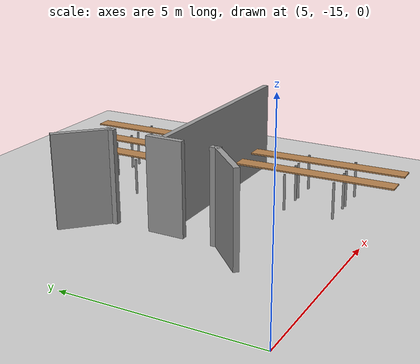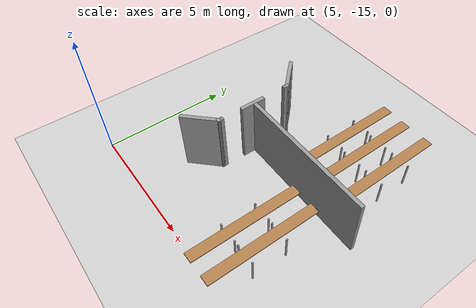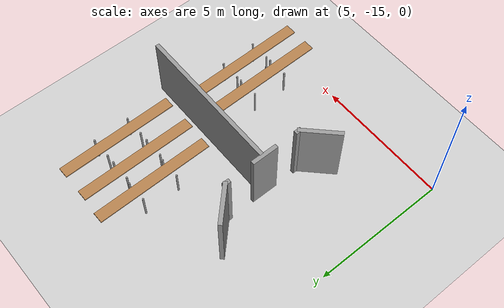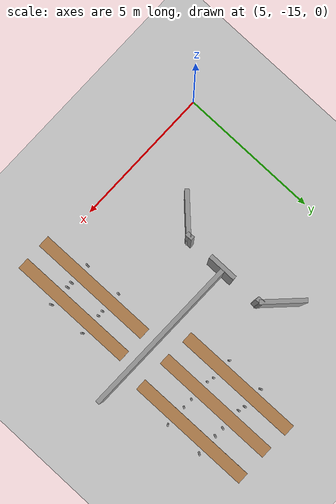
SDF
<sdf version="1.6">
 <world name="default">
  <model name="ground_plane">
   <static>1</static>
   <link name="link">
    <collision name="collision">
     <geometry><plane><normal>0 0 1</normal><size>100 100</size></plane></geometry>
     <surface><friction><ode><mu>100</mu><mu2>50</mu2></ode></friction></surface>
    </collision>
    <visual name="visual">
     <cast_shadows>0</cast_shadows>
     <geometry><plane><normal>0 0 1</normal><size>100 100</size></plane></geometry>
     <material>
      <script><uri>file://media/materials/scripts/gazebo.material</uri><name>Gazebo/Grey</name></script>
     </material>
    </visual>
   </link>
  </model>
  <model name="Parte_DX_(visione_alta_mappa)_CV1">
   <pose>7.84951 -6.02799 0 0 -0 0</pose>
   <link name="Wall_105">
    <collision name="Wall_105_Collision">
     <geometry><box><size>1.5 0.15 2.5</size></box></geometry>
     <pose>0 0 1.25 0 -0 0</pose>
    </collision>
    <visual name="Wall_105_Visual">
     <pose>0 0 1.25 0 -0 0</pose>
     <geometry><box><size>1.5 0.15 2.5</size></box></geometry>
     <material>
      <script><uri>file://media/materials/scripts/gazebo.material</uri><name>Gazebo/Grey</name></script>
      <ambient>1 1 1 1</ambient>
     </material>
    </visual>
    <pose>0.223913 -2.41418 0 0 0 -0.785398</pose>
   </link>
   <link name="Wall_106">
    <collision name="Wall_106_Collision">
     <geometry><box><size>0.25 0.15 2.5</size></box></geometry>
     <pose>0 0 1.25 0 -0 0</pose>
    </collision>
    <visual name="Wall_106_Visual">
     <pose>0 0 1.25 0 -0 0</pose>
     <geometry><box><size>0.25 0.15 2.5</size></box></geometry>
     <material>
      <script><uri>file://media/materials/scripts/gazebo.material</uri><name>Gazebo/Grey</name></script>
      <ambient>1 1 1 1</ambient>
     </material>
    </visual>
    <pose>0.70121 -2.94148 0 0 0 -1.5708</pose>
   </link>
   <link name="Wall_108">
    <collision name="Wall_108_Collision">
     <geometry><box><size>1 0.15 2.5</size></box></geometry>
     <pose>0 0 1.25 0 -0 0</pose>
    </collision>
    <visual name="Wall_108_Visual">
     <pose>0 0 1.25 0 -0 0</pose>
     <geometry><box><size>1 0.15 2.5</size></box></geometry>
     <material>
      <script><uri>file://media/materials/scripts/gazebo.material</uri><name>Gazebo/Grey</name></script>
      <ambient>1 1 1 1</ambient>
     </material>
    </visual>
    <pose>0.723822 -4.48667 0 0 0 -1.5708</pose>
   </link>
   <link name="Wall_110">
    <collision name="Wall_110_Collision">
     <geometry><box><size>0.25 0.15 2.5</size></box></geometry>
     <pose>0 0 1.25 0 -0 0</pose>
    </collision>
    <visual name="Wall_110_Visual">
     <pose>0 0 1.25 0 -0 0</pose>
     <geometry><box><size>0.25 0.15 2.5</size></box></geometry>
     <material>
      <script><uri>file://media/materials/scripts/gazebo.material</uri><name>Gazebo/Grey</name></script>
      <ambient>1 1 1 1</ambient>
     </material>
    </visual>
    <pose>0.706863 -5.87545 0 0 0 -1.5708</pose>
   </link>
   <link name="Wall_111">
    <collision name="Wall_111_Collision">
     <geometry><box><size>1.5 0.15 2.5</size></box></geometry>
     <pose>0 0 1.25 0 -0 0</pose>
    </collision>
    <visual name="Wall_111_Visual">
     <pose>0 0 1.25 0 -0 0</pose>
     <geometry><box><size>1.5 0.15 2.5</size></box></geometry>
     <material>
      <script><uri>file://media/materials/scripts/gazebo.material</uri><name>Gazebo/Grey</name></script>
      <ambient>1 1 1 1</ambient>
     </material>
    </visual>
    <pose>0.229566 -6.40275 0 0 0 -2.35619</pose>
   </link>
   <static>1</static>
  </model>
  <model name="CV1_FINAL">
   <pose>11.4178 -10.4754 0 0 -0 0</pose>
   <link name="Wall_8">
    <collision name="Wall_8_Collision">
     <geometry><box><size>5.58045 0.15 2.5</size></box></geometry>
     <pose>0 0 1.25 0 -0 0</pose>
    </collision>
    <visual name="Wall_8_Visual">
     <pose>0 0 1.25 0 -0 0</pose>
     <geometry><box><size>5.58045 0.15 2.5</size></box></geometry>
     <material>
      <script><uri>file://media/materials/scripts/gazebo.material</uri><name>Gazebo/Grey</name></script>
      <ambient>1 1 1 1</ambient>
     </material>
    </visual>
    <pose>0 0 0 0 -0 3.13239</pose>
   </link>
   <static>1</static>
  </model>
  <model name="tablesclass_clone_23">
   <link name="link">
    <inertial>
     <inertia><ixx>0</ixx><ixy>0</ixy><ixz>0</ixz><iyy>0</iyy><iyz>0</iyz><izz>0</izz></inertia>
     <mass>1.73923</mass>
    </inertial>
    <visual name="front_right_leg">
     <pose>0.68 -0.38 0.5 0 -0 0</pose>
     <geometry><cylinder><radius>0.0324505</radius><length>1</length></cylinder></geometry>
     <material>
      <script><uri>file://media/materials/scripts/gazebo.material</uri><name>Gazebo/Grey</name></script>
      <ambient>0.3 0.3 0.3 1</ambient>
      <diffuse>0.7 0.7 0.7 1</diffuse>
      <specular>0.01 0.01 0.01 1</specular>
      <emissive>0 0 0 1</emissive>
     </material>
    </visual>
    <visual name="back_left_leg">
     <pose>-0.68 0.38 0.5 0 -0 0</pose>
     <geometry><cylinder><radius>0.0324505</radius><length>1</length></cylinder></geometry>
     <material>
      <script><uri>file://media/materials/scripts/gazebo.material</uri><name>Gazebo/Grey</name></script>
      <ambient>0.3 0.3 0.3 1</ambient>
      <diffuse>0.7 0.7 0.7 1</diffuse>
      <specular>0.01 0.01 0.01 1</specular>
      <emissive>0 0 0 1</emissive>
     </material>
    </visual>
    <visual name="front_left_leg">
     <pose>0.68 0.38 0.5 0 -0 0</pose>
     <geometry><cylinder><radius>0.0324505</radius><length>1</length></cylinder></geometry>
     <material>
      <script><uri>file://media/materials/scripts/gazebo.material</uri><name>Gazebo/Grey</name></script>
      <ambient>0.3 0.3 0.3 1</ambient>
      <diffuse>0.7 0.7 0.7 1</diffuse>
      <specular>0.01 0.01 0.01 1</specular>
      <emissive>0 0 0 1</emissive>
     </material>
    </visual>
    <visual name="visual1">
     <pose>0 0 1 0 -0 0</pose>
     <geometry><box><size>4.38513 0.412326 0.04</size></box></geometry>
     <material>
      <script><uri>file://media/materials/scripts/gazebo.material</uri><name>Gazebo/Wood</name></script>
      <ambient>1 1 1 1</ambient>
      <diffuse>1 1 1 1</diffuse>
      <specular>0.2 0.2 0.2 1</specular>
      <emissive>0 0 0 1</emissive>
     </material>
    </visual>
    <visual name="back_right_leg">
     <pose>-0.68 -0.38 0.5 0 -0 0</pose>
     <geometry><cylinder><radius>0.0324505</radius><length>1</length></cylinder></geometry>
     <material>
      <script><uri>file://media/materials/scripts/gazebo.material</uri><name>Gazebo/Grey</name></script>
      <ambient>0.3 0.3 0.3 1</ambient>
      <diffuse>0.7 0.7 0.7 1</diffuse>
      <specular>0.01 0.01 0.01 1</specular>
      <emissive>0 0 0 1</emissive>
     </material>
    </visual>
    <collision name="front_left_leg">
     <pose>0.68 0.38 0.5 0 -0 0</pose>
     <geometry><cylinder><radius>0.03245</radius><length>1</length></cylinder></geometry>
     <surface>
      <friction>
       <ode><mu>1</mu><mu2>1</mu2><fdir1>0 0 0</fdir1><slip1>0</slip1><slip2>0</slip2></ode>
       <torsional>
        <coefficient>1</coefficient>
        <patch_radius>0</patch_radius>
        <surface_radius>0</surface_radius>
        <use_patch_radius>1</use_patch_radius>
        <ode><slip>0</slip></ode>
       </torsional>
      </friction>
      <bounce><restitution_coefficient>0</restitution_coefficient><threshold>1e+06</threshold></bounce>
      <contact>
       <collide_without_contact>0</collide_without_contact>
       <collide_without_contact_bitmask>1</collide_without_contact_bitmask>
       <collide_bitmask>1</collide_bitmask>
       <ode>
        <soft_cfm>0</soft_cfm>
        <soft_erp>0.2</soft_erp>
        <kp>1e+13</kp>
        <kd>1</kd>
        <max_vel>0.01</max_vel>
        <min_depth>0</min_depth>
       </ode>
       <bullet>
        <split_impulse>1</split_impulse>
        <split_impulse_penetration_threshold>-0.01</split_impulse_penetration_threshold>
        <soft_cfm>0</soft_cfm>
        <soft_erp>0.2</soft_erp>
        <kp>1e+13</kp>
        <kd>1</kd>
       </bullet>
      </contact>
     </surface>
    </collision>
    <collision name="front_right_leg">
     <pose>0.68 -0.38 0.5 0 -0 0</pose>
     <geometry><cylinder><radius>0.03245</radius><length>1</length></cylinder></geometry>
     <surface>
      <friction>
       <ode><mu>1</mu><mu2>1</mu2><fdir1>0 0 0</fdir1><slip1>0</slip1><slip2>0</slip2></ode>
       <torsional>
        <coefficient>1</coefficient>
        <patch_radius>0</patch_radius>
        <surface_radius>0</surface_radius>
        <use_patch_radius>1</use_patch_radius>
        <ode><slip>0</slip></ode>
       </torsional>
      </friction>
      <bounce><restitution_coefficient>0</restitution_coefficient><threshold>1e+06</threshold></bounce>
      <contact>
       <collide_without_contact>0</collide_without_contact>
       <collide_without_contact_bitmask>1</collide_without_contact_bitmask>
       <collide_bitmask>1</collide_bitmask>
       <ode>
        <soft_cfm>0</soft_cfm>
        <soft_erp>0.2</soft_erp>
        <kp>1e+13</kp>
        <kd>1</kd>
        <max_vel>0.01</max_vel>
        <min_depth>0</min_depth>
       </ode>
       <bullet>
        <split_impulse>1</split_impulse>
        <split_impulse_penetration_threshold>-0.01</split_impulse_penetration_threshold>
        <soft_cfm>0</soft_cfm>
        <soft_erp>0.2</soft_erp>
        <kp>1e+13</kp>
        <kd>1</kd>
       </bullet>
      </contact>
     </surface>
    </collision>
    <collision name="back_left_leg">
     <pose>-0.68 0.38 0.5 0 -0 0</pose>
     <geometry><cylinder><radius>0.03245</radius><length>1</length></cylinder></geometry>
     <surface>
      <friction>
       <ode><mu>1</mu><mu2>1</mu2><fdir1>0 0 0</fdir1><slip1>0</slip1><slip2>0</slip2></ode>
       <torsional>
        <coefficient>1</coefficient>
        <patch_radius>0</patch_radius>
        <surface_radius>0</surface_radius>
        <use_patch_radius>1</use_patch_radius>
        <ode><slip>0</slip></ode>
       </torsional>
      </friction>
      <bounce><restitution_coefficient>0</restitution_coefficient><threshold>1e+06</threshold></bounce>
      <contact>
       <collide_without_contact>0</collide_without_contact>
       <collide_without_contact_bitmask>1</collide_without_contact_bitmask>
       <collide_bitmask>1</collide_bitmask>
       <ode>
        <soft_cfm>0</soft_cfm>
        <soft_erp>0.2</soft_erp>
        <kp>1e+13</kp>
        <kd>1</kd>
        <max_vel>0.01</max_vel>
        <min_depth>0</min_depth>
       </ode>
       <bullet>
        <split_impulse>1</split_impulse>
        <split_impulse_penetration_threshold>-0.01</split_impulse_penetration_threshold>
        <soft_cfm>0</soft_cfm>
        <soft_erp>0.2</soft_erp>
        <kp>1e+13</kp>
        <kd>1</kd>
       </bullet>
      </contact>
     </surface>
    </collision>
    <collision name="back_right_leg">
     <pose>-0.68 -0.38 0.5 0 -0 0</pose>
     <geometry><cylinder><radius>0.03245</radius><length>1</length></cylinder></geometry>
     <surface>
      <friction>
       <ode><mu>1</mu><mu2>1</mu2><fdir1>0 0 0</fdir1><slip1>0</slip1><slip2>0</slip2></ode>
       <torsional>
        <coefficient>1</coefficient>
        <patch_radius>0</patch_radius>
        <surface_radius>0</surface_radius>
        <use_patch_radius>1</use_patch_radius>
        <ode><slip>0</slip></ode>
       </torsional>
      </friction>
      <bounce><restitution_coefficient>0</restitution_coefficient><threshold>1e+06</threshold></bounce>
      <contact>
       <collide_without_contact>0</collide_without_contact>
       <collide_without_contact_bitmask>1</collide_without_contact_bitmask>
       <collide_bitmask>1</collide_bitmask>
       <ode>
        <soft_cfm>0</soft_cfm>
        <soft_erp>0.2</soft_erp>
        <kp>1e+13</kp>
        <kd>1</kd>
        <max_vel>0.01</max_vel>
        <min_depth>0</min_depth>
       </ode>
       <bullet>
        <split_impulse>1</split_impulse>
        <split_impulse_penetration_threshold>-0.01</split_impulse_penetration_threshold>
        <soft_cfm>0</soft_cfm>
        <soft_erp>0.2</soft_erp>
        <kp>1e+13</kp>
        <kd>1</kd>
       </bullet>
      </contact>
     </surface>
    </collision>
    <collision name="surface">
     <pose>0 0 1 0 -0 0</pose>
     <geometry><box><size>4.69836 0.412326 0.03</size></box></geometry>
     <surface>
      <friction>
       <ode><mu>0.6</mu><mu2>0.6</mu2><fdir1>0 0 0</fdir1><slip1>0</slip1><slip2>0</slip2></ode>
       <torsional>
        <coefficient>1</coefficient>
        <patch_radius>0</patch_radius>
        <surface_radius>0</surface_radius>
        <use_patch_radius>1</use_patch_radius>
        <ode><slip>0</slip></ode>
       </torsional>
      </friction>
      <bounce><restitution_coefficient>0</restitution_coefficient><threshold>1e+06</threshold></bounce>
      <contact>
       <collide_without_contact>0</collide_without_contact>
       <collide_without_contact_bitmask>1</collide_without_contact_bitmask>
       <collide_bitmask>1</collide_bitmask>
       <ode>
        <soft_cfm>0</soft_cfm>
        <soft_erp>0.2</soft_erp>
        <kp>1e+13</kp>
        <kd>1</kd>
        <max_vel>0.01</max_vel>
        <min_depth>0</min_depth>
       </ode>
       <bullet>
        <split_impulse>1</split_impulse>
        <split_impulse_penetration_threshold>-0.01</split_impulse_penetration_threshold>
        <soft_cfm>0</soft_cfm>
        <soft_erp>0.2</soft_erp>
        <kp>1e+13</kp>
        <kd>1</kd>
       </bullet>
      </contact>
     </surface>
    </collision>
   </link>
   <static>0</static>
   <pose>10.8438 -7.6815 0.000352 -6e-06 -0.002641 -1.56245</pose>
  </model>
  <model name="tablesclass_clone_25">
   <link name="link">
    <inertial>
     <inertia><ixx>0</ixx><ixy>0</ixy><ixz>0</ixz><iyy>0</iyy><iyz>0</iyz><izz>0</izz></inertia>
     <mass>1.73923</mass>
    </inertial>
    <visual name="front_right_leg">
     <pose>0.68 -0.38 0.5 0 -0 0</pose>
     <geometry><cylinder><radius>0.0324505</radius><length>1</length></cylinder></geometry>
     <material>
      <script><uri>file://media/materials/scripts/gazebo.material</uri><name>Gazebo/Grey</name></script>
      <ambient>0.3 0.3 0.3 1</ambient>
      <diffuse>0.7 0.7 0.7 1</diffuse>
      <specular>0.01 0.01 0.01 1</specular>
      <emissive>0 0 0 1</emissive>
     </material>
    </visual>
    <visual name="back_left_leg">
     <pose>-0.68 0.38 0.5 0 -0 0</pose>
     <geometry><cylinder><radius>0.0324505</radius><length>1</length></cylinder></geometry>
     <material>
      <script><uri>file://media/materials/scripts/gazebo.material</uri><name>Gazebo/Grey</name></script>
      <ambient>0.3 0.3 0.3 1</ambient>
      <diffuse>0.7 0.7 0.7 1</diffuse>
      <specular>0.01 0.01 0.01 1</specular>
      <emissive>0 0 0 1</emissive>
     </material>
    </visual>
    <visual name="front_left_leg">
     <pose>0.68 0.38 0.5 0 -0 0</pose>
     <geometry><cylinder><radius>0.0324505</radius><length>1</length></cylinder></geometry>
     <material>
      <script><uri>file://media/materials/scripts/gazebo.material</uri><name>Gazebo/Grey</name></script>
      <ambient>0.3 0.3 0.3 1</ambient>
      <diffuse>0.7 0.7 0.7 1</diffuse>
      <specular>0.01 0.01 0.01 1</specular>
      <emissive>0 0 0 1</emissive>
     </material>
    </visual>
    <visual name="visual1">
     <pose>0 0 1 0 -0 0</pose>
     <geometry><box><size>4.38513 0.412326 0.04</size></box></geometry>
     <material>
      <script><uri>file://media/materials/scripts/gazebo.material</uri><name>Gazebo/Wood</name></script>
      <ambient>1 1 1 1</ambient>
      <diffuse>1 1 1 1</diffuse>
      <specular>0.2 0.2 0.2 1</specular>
      <emissive>0 0 0 1</emissive>
     </material>
    </visual>
    <visual name="back_right_leg">
     <pose>-0.68 -0.38 0.5 0 -0 0</pose>
     <geometry><cylinder><radius>0.0324505</radius><length>1</length></cylinder></geometry>
     <material>
      <script><uri>file://media/materials/scripts/gazebo.material</uri><name>Gazebo/Grey</name></script>
      <ambient>0.3 0.3 0.3 1</ambient>
      <diffuse>0.7 0.7 0.7 1</diffuse>
      <specular>0.01 0.01 0.01 1</specular>
      <emissive>0 0 0 1</emissive>
     </material>
    </visual>
    <collision name="front_left_leg">
     <pose>0.68 0.38 0.5 0 -0 0</pose>
     <geometry><cylinder><radius>0.03245</radius><length>1</length></cylinder></geometry>
     <surface>
      <friction>
       <ode><mu>1</mu><mu2>1</mu2><fdir1>0 0 0</fdir1><slip1>0</slip1><slip2>0</slip2></ode>
       <torsional>
        <coefficient>1</coefficient>
        <patch_radius>0</patch_radius>
        <surface_radius>0</surface_radius>
        <use_patch_radius>1</use_patch_radius>
        <ode><slip>0</slip></ode>
       </torsional>
      </friction>
      <bounce><restitution_coefficient>0</restitution_coefficient><threshold>1e+06</threshold></bounce>
      <contact>
       <collide_without_contact>0</collide_without_contact>
       <collide_without_contact_bitmask>1</collide_without_contact_bitmask>
       <collide_bitmask>1</collide_bitmask>
       <ode>
        <soft_cfm>0</soft_cfm>
        <soft_erp>0.2</soft_erp>
        <kp>1e+13</kp>
        <kd>1</kd>
        <max_vel>0.01</max_vel>
        <min_depth>0</min_depth>
       </ode>
       <bullet>
        <split_impulse>1</split_impulse>
        <split_impulse_penetration_threshold>-0.01</split_impulse_penetration_threshold>
        <soft_cfm>0</soft_cfm>
        <soft_erp>0.2</soft_erp>
        <kp>1e+13</kp>
        <kd>1</kd>
       </bullet>
      </contact>
     </surface>
    </collision>
    <collision name="front_right_leg">
     <pose>0.68 -0.38 0.5 0 -0 0</pose>
     <geometry><cylinder><radius>0.03245</radius><length>1</length></cylinder></geometry>
     <surface>
      <friction>
       <ode><mu>1</mu><mu2>1</mu2><fdir1>0 0 0</fdir1><slip1>0</slip1><slip2>0</slip2></ode>
       <torsional>
        <coefficient>1</coefficient>
        <patch_radius>0</patch_radius>
        <surface_radius>0</surface_radius>
        <use_patch_radius>1</use_patch_radius>
        <ode><slip>0</slip></ode>
       </torsional>
      </friction>
      <bounce><restitution_coefficient>0</restitution_coefficient><threshold>1e+06</threshold></bounce>
      <contact>
       <collide_without_contact>0</collide_without_contact>
       <collide_without_contact_bitmask>1</collide_without_contact_bitmask>
       <collide_bitmask>1</collide_bitmask>
       <ode>
        <soft_cfm>0</soft_cfm>
        <soft_erp>0.2</soft_erp>
        <kp>1e+13</kp>
        <kd>1</kd>
        <max_vel>0.01</max_vel>
        <min_depth>0</min_depth>
       </ode>
       <bullet>
        <split_impulse>1</split_impulse>
        <split_impulse_penetration_threshold>-0.01</split_impulse_penetration_threshold>
        <soft_cfm>0</soft_cfm>
        <soft_erp>0.2</soft_erp>
        <kp>1e+13</kp>
        <kd>1</kd>
       </bullet>
      </contact>
     </surface>
    </collision>
    <collision name="back_left_leg">
     <pose>-0.68 0.38 0.5 0 -0 0</pose>
     <geometry><cylinder><radius>0.03245</radius><length>1</length></cylinder></geometry>
     <surface>
      <friction>
       <ode><mu>1</mu><mu2>1</mu2><fdir1>0 0 0</fdir1><slip1>0</slip1><slip2>0</slip2></ode>
       <torsional>
        <coefficient>1</coefficient>
        <patch_radius>0</patch_radius>
        <surface_radius>0</surface_radius>
        <use_patch_radius>1</use_patch_radius>
        <ode><slip>0</slip></ode>
       </torsional>
      </friction>
      <bounce><restitution_coefficient>0</restitution_coefficient><threshold>1e+06</threshold></bounce>
      <contact>
       <collide_without_contact>0</collide_without_contact>
       <collide_without_contact_bitmask>1</collide_without_contact_bitmask>
       <collide_bitmask>1</collide_bitmask>
       <ode>
        <soft_cfm>0</soft_cfm>
        <soft_erp>0.2</soft_erp>
        <kp>1e+13</kp>
        <kd>1</kd>
        <max_vel>0.01</max_vel>
        <min_depth>0</min_depth>
       </ode>
       <bullet>
        <split_impulse>1</split_impulse>
        <split_impulse_penetration_threshold>-0.01</split_impulse_penetration_threshold>
        <soft_cfm>0</soft_cfm>
        <soft_erp>0.2</soft_erp>
        <kp>1e+13</kp>
        <kd>1</kd>
       </bullet>
      </contact>
     </surface>
    </collision>
    <collision name="back_right_leg">
     <pose>-0.68 -0.38 0.5 0 -0 0</pose>
     <geometry><cylinder><radius>0.03245</radius><length>1</length></cylinder></geometry>
     <surface>
      <friction>
       <ode><mu>1</mu><mu2>1</mu2><fdir1>0 0 0</fdir1><slip1>0</slip1><slip2>0</slip2></ode>
       <torsional>
        <coefficient>1</coefficient>
        <patch_radius>0</patch_radius>
        <surface_radius>0</surface_radius>
        <use_patch_radius>1</use_patch_radius>
        <ode><slip>0</slip></ode>
       </torsional>
      </friction>
      <bounce><restitution_coefficient>0</restitution_coefficient><threshold>1e+06</threshold></bounce>
      <contact>
       <collide_without_contact>0</collide_without_contact>
       <collide_without_contact_bitmask>1</collide_without_contact_bitmask>
       <collide_bitmask>1</collide_bitmask>
       <ode>
        <soft_cfm>0</soft_cfm>
        <soft_erp>0.2</soft_erp>
        <kp>1e+13</kp>
        <kd>1</kd>
        <max_vel>0.01</max_vel>
        <min_depth>0</min_depth>
       </ode>
       <bullet>
        <split_impulse>1</split_impulse>
        <split_impulse_penetration_threshold>-0.01</split_impulse_penetration_threshold>
        <soft_cfm>0</soft_cfm>
        <soft_erp>0.2</soft_erp>
        <kp>1e+13</kp>
        <kd>1</kd>
       </bullet>
      </contact>
     </surface>
    </collision>
    <collision name="surface">
     <pose>0 0 1 0 -0 0</pose>
     <geometry><box><size>4.69836 0.412326 0.03</size></box></geometry>
     <surface>
      <friction>
       <ode><mu>0.6</mu><mu2>0.6</mu2><fdir1>0 0 0</fdir1><slip1>0</slip1><slip2>0</slip2></ode>
       <torsional>
        <coefficient>1</coefficient>
        <patch_radius>0</patch_radius>
        <surface_radius>0</surface_radius>
        <use_patch_radius>1</use_patch_radius>
        <ode><slip>0</slip></ode>
       </torsional>
      </friction>
      <bounce><restitution_coefficient>0</restitution_coefficient><threshold>1e+06</threshold></bounce>
      <contact>
       <collide_without_contact>0</collide_without_contact>
       <collide_without_contact_bitmask>1</collide_without_contact_bitmask>
       <collide_bitmask>1</collide_bitmask>
       <ode>
        <soft_cfm>0</soft_cfm>
        <soft_erp>0.2</soft_erp>
        <kp>1e+13</kp>
        <kd>1</kd>
        <max_vel>0.01</max_vel>
        <min_depth>0</min_depth>
       </ode>
       <bullet>
        <split_impulse>1</split_impulse>
        <split_impulse_penetration_threshold>-0.01</split_impulse_penetration_threshold>
        <soft_cfm>0</soft_cfm>
        <soft_erp>0.2</soft_erp>
        <kp>1e+13</kp>
        <kd>1</kd>
       </bullet>
      </contact>
     </surface>
    </collision>
   </link>
   <static>0</static>
   <pose>11.8298 -7.73492 -0.000453 2e-06 -0.000701 -1.56369</pose>
  </model>
  <model name="tablesclass_clone_27">
   <link name="link">
    <inertial>
     <inertia><ixx>0</ixx><ixy>0</ixy><ixz>0</ixz><iyy>0</iyy><iyz>0</iyz><izz>0</izz></inertia>
     <mass>1.73923</mass>
    </inertial>
    <visual name="front_right_leg">
     <pose>0.68 -0.38 0.5 0 -0 0</pose>
     <geometry><cylinder><radius>0.0324505</radius><length>1</length></cylinder></geometry>
     <material>
      <script><uri>file://media/materials/scripts/gazebo.material</uri><name>Gazebo/Grey</name></script>
      <ambient>0.3 0.3 0.3 1</ambient>
      <diffuse>0.7 0.7 0.7 1</diffuse>
      <specular>0.01 0.01 0.01 1</specular>
      <emissive>0 0 0 1</emissive>
     </material>
    </visual>
    <visual name="back_left_leg">
     <pose>-0.68 0.38 0.5 0 -0 0</pose>
     <geometry><cylinder><radius>0.0324505</radius><length>1</length></cylinder></geometry>
     <material>
      <script><uri>file://media/materials/scripts/gazebo.material</uri><name>Gazebo/Grey</name></script>
      <ambient>0.3 0.3 0.3 1</ambient>
      <diffuse>0.7 0.7 0.7 1</diffuse>
      <specular>0.01 0.01 0.01 1</specular>
      <emissive>0 0 0 1</emissive>
     </material>
    </visual>
    <visual name="front_left_leg">
     <pose>0.68 0.38 0.5 0 -0 0</pose>
     <geometry><cylinder><radius>0.0324505</radius><length>1</length></cylinder></geometry>
     <material>
      <script><uri>file://media/materials/scripts/gazebo.material</uri><name>Gazebo/Grey</name></script>
      <ambient>0.3 0.3 0.3 1</ambient>
      <diffuse>0.7 0.7 0.7 1</diffuse>
      <specular>0.01 0.01 0.01 1</specular>
      <emissive>0 0 0 1</emissive>
     </material>
    </visual>
    <visual name="visual1">
     <pose>0 0 1 0 -0 0</pose>
     <geometry><box><size>4.38513 0.412326 0.04</size></box></geometry>
     <material>
      <script><uri>file://media/materials/scripts/gazebo.material</uri><name>Gazebo/Wood</name></script>
      <ambient>1 1 1 1</ambient>
      <diffuse>1 1 1 1</diffuse>
      <specular>0.2 0.2 0.2 1</specular>
      <emissive>0 0 0 1</emissive>
     </material>
    </visual>
    <visual name="back_right_leg">
     <pose>-0.68 -0.38 0.5 0 -0 0</pose>
     <geometry><cylinder><radius>0.0324505</radius><length>1</length></cylinder></geometry>
     <material>
      <script><uri>file://media/materials/scripts/gazebo.material</uri><name>Gazebo/Grey</name></script>
      <ambient>0.3 0.3 0.3 1</ambient>
      <diffuse>0.7 0.7 0.7 1</diffuse>
      <specular>0.01 0.01 0.01 1</specular>
      <emissive>0 0 0 1</emissive>
     </material>
    </visual>
    <collision name="front_left_leg">
     <pose>0.68 0.38 0.5 0 -0 0</pose>
     <geometry><cylinder><radius>0.03245</radius><length>1</length></cylinder></geometry>
     <surface>
      <friction>
       <ode><mu>1</mu><mu2>1</mu2><fdir1>0 0 0</fdir1><slip1>0</slip1><slip2>0</slip2></ode>
       <torsional>
        <coefficient>1</coefficient>
        <patch_radius>0</patch_radius>
        <surface_radius>0</surface_radius>
        <use_patch_radius>1</use_patch_radius>
        <ode><slip>0</slip></ode>
       </torsional>
      </friction>
      <bounce><restitution_coefficient>0</restitution_coefficient><threshold>1e+06</threshold></bounce>
      <contact>
       <collide_without_contact>0</collide_without_contact>
       <collide_without_contact_bitmask>1</collide_without_contact_bitmask>
       <collide_bitmask>1</collide_bitmask>
       <ode>
        <soft_cfm>0</soft_cfm>
        <soft_erp>0.2</soft_erp>
        <kp>1e+13</kp>
        <kd>1</kd>
        <max_vel>0.01</max_vel>
        <min_depth>0</min_depth>
       </ode>
       <bullet>
        <split_impulse>1</split_impulse>
        <split_impulse_penetration_threshold>-0.01</split_impulse_penetration_threshold>
        <soft_cfm>0</soft_cfm>
        <soft_erp>0.2</soft_erp>
        <kp>1e+13</kp>
        <kd>1</kd>
       </bullet>
      </contact>
     </surface>
    </collision>
    <collision name="front_right_leg">
     <pose>0.68 -0.38 0.5 0 -0 0</pose>
     <geometry><cylinder><radius>0.03245</radius><length>1</length></cylinder></geometry>
     <surface>
      <friction>
       <ode><mu>1</mu><mu2>1</mu2><fdir1>0 0 0</fdir1><slip1>0</slip1><slip2>0</slip2></ode>
       <torsional>
        <coefficient>1</coefficient>
        <patch_radius>0</patch_radius>
        <surface_radius>0</surface_radius>
        <use_patch_radius>1</use_patch_radius>
        <ode><slip>0</slip></ode>
       </torsional>
      </friction>
      <bounce><restitution_coefficient>0</restitution_coefficient><threshold>1e+06</threshold></bounce>
      <contact>
       <collide_without_contact>0</collide_without_contact>
       <collide_without_contact_bitmask>1</collide_without_contact_bitmask>
       <collide_bitmask>1</collide_bitmask>
       <ode>
        <soft_cfm>0</soft_cfm>
        <soft_erp>0.2</soft_erp>
        <kp>1e+13</kp>
        <kd>1</kd>
        <max_vel>0.01</max_vel>
        <min_depth>0</min_depth>
       </ode>
       <bullet>
        <split_impulse>1</split_impulse>
        <split_impulse_penetration_threshold>-0.01</split_impulse_penetration_threshold>
        <soft_cfm>0</soft_cfm>
        <soft_erp>0.2</soft_erp>
        <kp>1e+13</kp>
        <kd>1</kd>
       </bullet>
      </contact>
     </surface>
    </collision>
    <collision name="back_left_leg">
     <pose>-0.68 0.38 0.5 0 -0 0</pose>
     <geometry><cylinder><radius>0.03245</radius><length>1</length></cylinder></geometry>
     <surface>
      <friction>
       <ode><mu>1</mu><mu2>1</mu2><fdir1>0 0 0</fdir1><slip1>0</slip1><slip2>0</slip2></ode>
       <torsional>
        <coefficient>1</coefficient>
        <patch_radius>0</patch_radius>
        <surface_radius>0</surface_radius>
        <use_patch_radius>1</use_patch_radius>
        <ode><slip>0</slip></ode>
       </torsional>
      </friction>
      <bounce><restitution_coefficient>0</restitution_coefficient><threshold>1e+06</threshold></bounce>
      <contact>
       <collide_without_contact>0</collide_without_contact>
       <collide_without_contact_bitmask>1</collide_without_contact_bitmask>
       <collide_bitmask>1</collide_bitmask>
       <ode>
        <soft_cfm>0</soft_cfm>
        <soft_erp>0.2</soft_erp>
        <kp>1e+13</kp>
        <kd>1</kd>
        <max_vel>0.01</max_vel>
        <min_depth>0</min_depth>
       </ode>
       <bullet>
        <split_impulse>1</split_impulse>
        <split_impulse_penetration_threshold>-0.01</split_impulse_penetration_threshold>
        <soft_cfm>0</soft_cfm>
        <soft_erp>0.2</soft_erp>
        <kp>1e+13</kp>
        <kd>1</kd>
       </bullet>
      </contact>
     </surface>
    </collision>
    <collision name="back_right_leg">
     <pose>-0.68 -0.38 0.5 0 -0 0</pose>
     <geometry><cylinder><radius>0.03245</radius><length>1</length></cylinder></geometry>
     <surface>
      <friction>
       <ode><mu>1</mu><mu2>1</mu2><fdir1>0 0 0</fdir1><slip1>0</slip1><slip2>0</slip2></ode>
       <torsional>
        <coefficient>1</coefficient>
        <patch_radius>0</patch_radius>
        <surface_radius>0</surface_radius>
        <use_patch_radius>1</use_patch_radius>
        <ode><slip>0</slip></ode>
       </torsional>
      </friction>
      <bounce><restitution_coefficient>0</restitution_coefficient><threshold>1e+06</threshold></bounce>
      <contact>
       <collide_without_contact>0</collide_without_contact>
       <collide_without_contact_bitmask>1</collide_without_contact_bitmask>
       <collide_bitmask>1</collide_bitmask>
       <ode>
        <soft_cfm>0</soft_cfm>
        <soft_erp>0.2</soft_erp>
        <kp>1e+13</kp>
        <kd>1</kd>
        <max_vel>0.01</max_vel>
        <min_depth>0</min_depth>
       </ode>
       <bullet>
        <split_impulse>1</split_impulse>
        <split_impulse_penetration_threshold>-0.01</split_impulse_penetration_threshold>
        <soft_cfm>0</soft_cfm>
        <soft_erp>0.2</soft_erp>
        <kp>1e+13</kp>
        <kd>1</kd>
       </bullet>
      </contact>
     </surface>
    </collision>
    <collision name="surface">
     <pose>0 0 1 0 -0 0</pose>
     <geometry><box><size>4.69836 0.412326 0.03</size></box></geometry>
     <surface>
      <friction>
       <ode><mu>0.6</mu><mu2>0.6</mu2><fdir1>0 0 0</fdir1><slip1>0</slip1><slip2>0</slip2></ode>
       <torsional>
        <coefficient>1</coefficient>
        <patch_radius>0</patch_radius>
        <surface_radius>0</surface_radius>
        <use_patch_radius>1</use_patch_radius>
        <ode><slip>0</slip></ode>
       </torsional>
      </friction>
      <bounce><restitution_coefficient>0</restitution_coefficient><threshold>1e+06</threshold></bounce>
      <contact>
       <collide_without_contact>0</collide_without_contact>
       <collide_without_contact_bitmask>1</collide_without_contact_bitmask>
       <collide_bitmask>1</collide_bitmask>
       <ode>
        <soft_cfm>0</soft_cfm>
        <soft_erp>0.2</soft_erp>
        <kp>1e+13</kp>
        <kd>1</kd>
        <max_vel>0.01</max_vel>
        <min_depth>0</min_depth>
       </ode>
       <bullet>
        <split_impulse>1</split_impulse>
        <split_impulse_penetration_threshold>-0.01</split_impulse_penetration_threshold>
        <soft_cfm>0</soft_cfm>
        <soft_erp>0.2</soft_erp>
        <kp>1e+13</kp>
        <kd>1</kd>
       </bullet>
      </contact>
     </surface>
    </collision>
   </link>
   <static>0</static>
   <pose>12.9355 -7.73496 0.00213 6e-06 -0.002987 -1.56344</pose>
  </model>
  <model name="tablesclass_clone_32">
   <link name="link">
    <inertial>
     <inertia><ixx>0</ixx><ixy>0</ixy><ixz>0</ixz><iyy>0</iyy><iyz>0</iyz><izz>0</izz></inertia>
     <mass>1.73923</mass>
    </inertial>
    <visual name="front_right_leg">
     <pose>0.68 -0.38 0.5 0 -0 0</pose>
     <geometry><cylinder><radius>0.0324505</radius><length>1</length></cylinder></geometry>
     <material>
      <script><uri>file://media/materials/scripts/gazebo.material</uri><name>Gazebo/Grey</name></script>
      <ambient>0.3 0.3 0.3 1</ambient>
      <diffuse>0.7 0.7 0.7 1</diffuse>
      <specular>0.01 0.01 0.01 1</specular>
      <emissive>0 0 0 1</emissive>
     </material>
    </visual>
    <visual name="back_left_leg">
     <pose>-0.68 0.38 0.5 0 -0 0</pose>
     <geometry><cylinder><radius>0.0324505</radius><length>1</length></cylinder></geometry>
     <material>
      <script><uri>file://media/materials/scripts/gazebo.material</uri><name>Gazebo/Grey</name></script>
      <ambient>0.3 0.3 0.3 1</ambient>
      <diffuse>0.7 0.7 0.7 1</diffuse>
      <specular>0.01 0.01 0.01 1</specular>
      <emissive>0 0 0 1</emissive>
     </material>
    </visual>
    <visual name="front_left_leg">
     <pose>0.68 0.38 0.5 0 -0 0</pose>
     <geometry><cylinder><radius>0.0324505</radius><length>1</length></cylinder></geometry>
     <material>
      <script><uri>file://media/materials/scripts/gazebo.material</uri><name>Gazebo/Grey</name></script>
      <ambient>0.3 0.3 0.3 1</ambient>
      <diffuse>0.7 0.7 0.7 1</diffuse>
      <specular>0.01 0.01 0.01 1</specular>
      <emissive>0 0 0 1</emissive>
     </material>
    </visual>
    <visual name="visual1">
     <pose>0 0 1 0 -0 0</pose>
     <geometry><box><size>4.38513 0.412326 0.04</size></box></geometry>
     <material>
      <script><uri>file://media/materials/scripts/gazebo.material</uri><name>Gazebo/Wood</name></script>
      <ambient>1 1 1 1</ambient>
      <diffuse>1 1 1 1</diffuse>
      <specular>0.2 0.2 0.2 1</specular>
      <emissive>0 0 0 1</emissive>
     </material>
    </visual>
    <visual name="back_right_leg">
     <pose>-0.68 -0.38 0.5 0 -0 0</pose>
     <geometry><cylinder><radius>0.0324505</radius><length>1</length></cylinder></geometry>
     <material>
      <script><uri>file://media/materials/scripts/gazebo.material</uri><name>Gazebo/Grey</name></script>
      <ambient>0.3 0.3 0.3 1</ambient>
      <diffuse>0.7 0.7 0.7 1</diffuse>
      <specular>0.01 0.01 0.01 1</specular>
      <emissive>0 0 0 1</emissive>
     </material>
    </visual>
    <collision name="front_left_leg">
     <pose>0.68 0.38 0.5 0 -0 0</pose>
     <geometry><cylinder><radius>0.03245</radius><length>1</length></cylinder></geometry>
     <surface>
      <friction>
       <ode><mu>1</mu><mu2>1</mu2><fdir1>0 0 0</fdir1><slip1>0</slip1><slip2>0</slip2></ode>
       <torsional>
        <coefficient>1</coefficient>
        <patch_radius>0</patch_radius>
        <surface_radius>0</surface_radius>
        <use_patch_radius>1</use_patch_radius>
        <ode><slip>0</slip></ode>
       </torsional>
      </friction>
      <bounce><restitution_coefficient>0</restitution_coefficient><threshold>1e+06</threshold></bounce>
      <contact>
       <collide_without_contact>0</collide_without_contact>
       <collide_without_contact_bitmask>1</collide_without_contact_bitmask>
       <collide_bitmask>1</collide_bitmask>
       <ode>
        <soft_cfm>0</soft_cfm>
        <soft_erp>0.2</soft_erp>
        <kp>1e+13</kp>
        <kd>1</kd>
        <max_vel>0.01</max_vel>
        <min_depth>0</min_depth>
       </ode>
       <bullet>
        <split_impulse>1</split_impulse>
        <split_impulse_penetration_threshold>-0.01</split_impulse_penetration_threshold>
        <soft_cfm>0</soft_cfm>
        <soft_erp>0.2</soft_erp>
        <kp>1e+13</kp>
        <kd>1</kd>
       </bullet>
      </contact>
     </surface>
    </collision>
    <collision name="front_right_leg">
     <pose>0.68 -0.38 0.5 0 -0 0</pose>
     <geometry><cylinder><radius>0.03245</radius><length>1</length></cylinder></geometry>
     <surface>
      <friction>
       <ode><mu>1</mu><mu2>1</mu2><fdir1>0 0 0</fdir1><slip1>0</slip1><slip2>0</slip2></ode>
       <torsional>
        <coefficient>1</coefficient>
        <patch_radius>0</patch_radius>
        <surface_radius>0</surface_radius>
        <use_patch_radius>1</use_patch_radius>
        <ode><slip>0</slip></ode>
       </torsional>
      </friction>
      <bounce><restitution_coefficient>0</restitution_coefficient><threshold>1e+06</threshold></bounce>
      <contact>
       <collide_without_contact>0</collide_without_contact>
       <collide_without_contact_bitmask>1</collide_without_contact_bitmask>
       <collide_bitmask>1</collide_bitmask>
       <ode>
        <soft_cfm>0</soft_cfm>
        <soft_erp>0.2</soft_erp>
        <kp>1e+13</kp>
        <kd>1</kd>
        <max_vel>0.01</max_vel>
        <min_depth>0</min_depth>
       </ode>
       <bullet>
        <split_impulse>1</split_impulse>
        <split_impulse_penetration_threshold>-0.01</split_impulse_penetration_threshold>
        <soft_cfm>0</soft_cfm>
        <soft_erp>0.2</soft_erp>
        <kp>1e+13</kp>
        <kd>1</kd>
       </bullet>
      </contact>
     </surface>
    </collision>
    <collision name="back_left_leg">
     <pose>-0.68 0.38 0.5 0 -0 0</pose>
     <geometry><cylinder><radius>0.03245</radius><length>1</length></cylinder></geometry>
     <surface>
      <friction>
       <ode><mu>1</mu><mu2>1</mu2><fdir1>0 0 0</fdir1><slip1>0</slip1><slip2>0</slip2></ode>
       <torsional>
        <coefficient>1</coefficient>
        <patch_radius>0</patch_radius>
        <surface_radius>0</surface_radius>
        <use_patch_radius>1</use_patch_radius>
        <ode><slip>0</slip></ode>
       </torsional>
      </friction>
      <bounce><restitution_coefficient>0</restitution_coefficient><threshold>1e+06</threshold></bounce>
      <contact>
       <collide_without_contact>0</collide_without_contact>
       <collide_without_contact_bitmask>1</collide_without_contact_bitmask>
       <collide_bitmask>1</collide_bitmask>
       <ode>
        <soft_cfm>0</soft_cfm>
        <soft_erp>0.2</soft_erp>
        <kp>1e+13</kp>
        <kd>1</kd>
        <max_vel>0.01</max_vel>
        <min_depth>0</min_depth>
       </ode>
       <bullet>
        <split_impulse>1</split_impulse>
        <split_impulse_penetration_threshold>-0.01</split_impulse_penetration_threshold>
        <soft_cfm>0</soft_cfm>
        <soft_erp>0.2</soft_erp>
        <kp>1e+13</kp>
        <kd>1</kd>
       </bullet>
      </contact>
     </surface>
    </collision>
    <collision name="back_right_leg">
     <pose>-0.68 -0.38 0.5 0 -0 0</pose>
     <geometry><cylinder><radius>0.03245</radius><length>1</length></cylinder></geometry>
     <surface>
      <friction>
       <ode><mu>1</mu><mu2>1</mu2><fdir1>0 0 0</fdir1><slip1>0</slip1><slip2>0</slip2></ode>
       <torsional>
        <coefficient>1</coefficient>
        <patch_radius>0</patch_radius>
        <surface_radius>0</surface_radius>
        <use_patch_radius>1</use_patch_radius>
        <ode><slip>0</slip></ode>
       </torsional>
      </friction>
      <bounce><restitution_coefficient>0</restitution_coefficient><threshold>1e+06</threshold></bounce>
      <contact>
       <collide_without_contact>0</collide_without_contact>
       <collide_without_contact_bitmask>1</collide_without_contact_bitmask>
       <collide_bitmask>1</collide_bitmask>
       <ode>
        <soft_cfm>0</soft_cfm>
        <soft_erp>0.2</soft_erp>
        <kp>1e+13</kp>
        <kd>1</kd>
        <max_vel>0.01</max_vel>
        <min_depth>0</min_depth>
       </ode>
       <bullet>
        <split_impulse>1</split_impulse>
        <split_impulse_penetration_threshold>-0.01</split_impulse_penetration_threshold>
        <soft_cfm>0</soft_cfm>
        <soft_erp>0.2</soft_erp>
        <kp>1e+13</kp>
        <kd>1</kd>
       </bullet>
      </contact>
     </surface>
    </collision>
    <collision name="surface">
     <pose>0 0 1 0 -0 0</pose>
     <geometry><box><size>4.69836 0.412326 0.03</size></box></geometry>
     <surface>
      <friction>
       <ode><mu>0.6</mu><mu2>0.6</mu2><fdir1>0 0 0</fdir1><slip1>0</slip1><slip2>0</slip2></ode>
       <torsional>
        <coefficient>1</coefficient>
        <patch_radius>0</patch_radius>
        <surface_radius>0</surface_radius>
        <use_patch_radius>1</use_patch_radius>
        <ode><slip>0</slip></ode>
       </torsional>
      </friction>
      <bounce><restitution_coefficient>0</restitution_coefficient><threshold>1e+06</threshold></bounce>
      <contact>
       <collide_without_contact>0</collide_without_contact>
       <collide_without_contact_bitmask>1</collide_without_contact_bitmask>
       <collide_bitmask>1</collide_bitmask>
       <ode>
        <soft_cfm>0</soft_cfm>
        <soft_erp>0.2</soft_erp>
        <kp>1e+13</kp>
        <kd>1</kd>
        <max_vel>0.01</max_vel>
        <min_depth>0</min_depth>
       </ode>
       <bullet>
        <split_impulse>1</split_impulse>
        <split_impulse_penetration_threshold>-0.01</split_impulse_penetration_threshold>
        <soft_cfm>0</soft_cfm>
        <soft_erp>0.2</soft_erp>
        <kp>1e+13</kp>
        <kd>1</kd>
       </bullet>
      </contact>
     </surface>
    </collision>
   </link>
   <static>0</static>
   <pose>11.715 -13.1218 0.007298 2e-06 -0.010245 -1.56372</pose>
  </model>
  <model name="tablesclass_clone_34">
   <link name="link">
    <inertial>
     <inertia><ixx>0</ixx><ixy>0</ixy><ixz>0</ixz><iyy>0</iyy><iyz>0</iyz><izz>0</izz></inertia>
     <mass>1.73923</mass>
    </inertial>
    <visual name="front_right_leg">
     <pose>0.68 -0.38 0.5 0 -0 0</pose>
     <geometry><cylinder><radius>0.0324505</radius><length>1</length></cylinder></geometry>
     <material>
      <script><uri>file://media/materials/scripts/gazebo.material</uri><name>Gazebo/Grey</name></script>
      <ambient>0.3 0.3 0.3 1</ambient>
      <diffuse>0.7 0.7 0.7 1</diffuse>
      <specular>0.01 0.01 0.01 1</specular>
      <emissive>0 0 0 1</emissive>
     </material>
    </visual>
    <visual name="back_left_leg">
     <pose>-0.68 0.38 0.5 0 -0 0</pose>
     <geometry><cylinder><radius>0.0324505</radius><length>1</length></cylinder></geometry>
     <material>
      <script><uri>file://media/materials/scripts/gazebo.material</uri><name>Gazebo/Grey</name></script>
      <ambient>0.3 0.3 0.3 1</ambient>
      <diffuse>0.7 0.7 0.7 1</diffuse>
      <specular>0.01 0.01 0.01 1</specular>
      <emissive>0 0 0 1</emissive>
     </material>
    </visual>
    <visual name="front_left_leg">
     <pose>0.68 0.38 0.5 0 -0 0</pose>
     <geometry><cylinder><radius>0.0324505</radius><length>1</length></cylinder></geometry>
     <material>
      <script><uri>file://media/materials/scripts/gazebo.material</uri><name>Gazebo/Grey</name></script>
      <ambient>0.3 0.3 0.3 1</ambient>
      <diffuse>0.7 0.7 0.7 1</diffuse>
      <specular>0.01 0.01 0.01 1</specular>
      <emissive>0 0 0 1</emissive>
     </material>
    </visual>
    <visual name="visual1">
     <pose>0 0 1 0 -0 0</pose>
     <geometry><box><size>4.38513 0.412326 0.04</size></box></geometry>
     <material>
      <script><uri>file://media/materials/scripts/gazebo.material</uri><name>Gazebo/Wood</name></script>
      <ambient>1 1 1 1</ambient>
      <diffuse>1 1 1 1</diffuse>
      <specular>0.2 0.2 0.2 1</specular>
      <emissive>0 0 0 1</emissive>
     </material>
    </visual>
    <visual name="back_right_leg">
     <pose>-0.68 -0.38 0.5 0 -0 0</pose>
     <geometry><cylinder><radius>0.0324505</radius><length>1</length></cylinder></geometry>
     <material>
      <script><uri>file://media/materials/scripts/gazebo.material</uri><name>Gazebo/Grey</name></script>
      <ambient>0.3 0.3 0.3 1</ambient>
      <diffuse>0.7 0.7 0.7 1</diffuse>
      <specular>0.01 0.01 0.01 1</specular>
      <emissive>0 0 0 1</emissive>
     </material>
    </visual>
    <collision name="front_left_leg">
     <pose>0.68 0.38 0.5 0 -0 0</pose>
     <geometry><cylinder><radius>0.03245</radius><length>1</length></cylinder></geometry>
     <surface>
      <friction>
       <ode><mu>1</mu><mu2>1</mu2><fdir1>0 0 0</fdir1><slip1>0</slip1><slip2>0</slip2></ode>
       <torsional>
        <coefficient>1</coefficient>
        <patch_radius>0</patch_radius>
        <surface_radius>0</surface_radius>
        <use_patch_radius>1</use_patch_radius>
        <ode><slip>0</slip></ode>
       </torsional>
      </friction>
      <bounce><restitution_coefficient>0</restitution_coefficient><threshold>1e+06</threshold></bounce>
      <contact>
       <collide_without_contact>0</collide_without_contact>
       <collide_without_contact_bitmask>1</collide_without_contact_bitmask>
       <collide_bitmask>1</collide_bitmask>
       <ode>
        <soft_cfm>0</soft_cfm>
        <soft_erp>0.2</soft_erp>
        <kp>1e+13</kp>
        <kd>1</kd>
        <max_vel>0.01</max_vel>
        <min_depth>0</min_depth>
       </ode>
       <bullet>
        <split_impulse>1</split_impulse>
        <split_impulse_penetration_threshold>-0.01</split_impulse_penetration_threshold>
        <soft_cfm>0</soft_cfm>
        <soft_erp>0.2</soft_erp>
        <kp>1e+13</kp>
        <kd>1</kd>
       </bullet>
      </contact>
     </surface>
    </collision>
    <collision name="front_right_leg">
     <pose>0.68 -0.38 0.5 0 -0 0</pose>
     <geometry><cylinder><radius>0.03245</radius><length>1</length></cylinder></geometry>
     <surface>
      <friction>
       <ode><mu>1</mu><mu2>1</mu2><fdir1>0 0 0</fdir1><slip1>0</slip1><slip2>0</slip2></ode>
       <torsional>
        <coefficient>1</coefficient>
        <patch_radius>0</patch_radius>
        <surface_radius>0</surface_radius>
        <use_patch_radius>1</use_patch_radius>
        <ode><slip>0</slip></ode>
       </torsional>
      </friction>
      <bounce><restitution_coefficient>0</restitution_coefficient><threshold>1e+06</threshold></bounce>
      <contact>
       <collide_without_contact>0</collide_without_contact>
       <collide_without_contact_bitmask>1</collide_without_contact_bitmask>
       <collide_bitmask>1</collide_bitmask>
       <ode>
        <soft_cfm>0</soft_cfm>
        <soft_erp>0.2</soft_erp>
        <kp>1e+13</kp>
        <kd>1</kd>
        <max_vel>0.01</max_vel>
        <min_depth>0</min_depth>
       </ode>
       <bullet>
        <split_impulse>1</split_impulse>
        <split_impulse_penetration_threshold>-0.01</split_impulse_penetration_threshold>
        <soft_cfm>0</soft_cfm>
        <soft_erp>0.2</soft_erp>
        <kp>1e+13</kp>
        <kd>1</kd>
       </bullet>
      </contact>
     </surface>
    </collision>
    <collision name="back_left_leg">
     <pose>-0.68 0.38 0.5 0 -0 0</pose>
     <geometry><cylinder><radius>0.03245</radius><length>1</length></cylinder></geometry>
     <surface>
      <friction>
       <ode><mu>1</mu><mu2>1</mu2><fdir1>0 0 0</fdir1><slip1>0</slip1><slip2>0</slip2></ode>
       <torsional>
        <coefficient>1</coefficient>
        <patch_radius>0</patch_radius>
        <surface_radius>0</surface_radius>
        <use_patch_radius>1</use_patch_radius>
        <ode><slip>0</slip></ode>
       </torsional>
      </friction>
      <bounce><restitution_coefficient>0</restitution_coefficient><threshold>1e+06</threshold></bounce>
      <contact>
       <collide_without_contact>0</collide_without_contact>
       <collide_without_contact_bitmask>1</collide_without_contact_bitmask>
       <collide_bitmask>1</collide_bitmask>
       <ode>
        <soft_cfm>0</soft_cfm>
        <soft_erp>0.2</soft_erp>
        <kp>1e+13</kp>
        <kd>1</kd>
        <max_vel>0.01</max_vel>
        <min_depth>0</min_depth>
       </ode>
       <bullet>
        <split_impulse>1</split_impulse>
        <split_impulse_penetration_threshold>-0.01</split_impulse_penetration_threshold>
        <soft_cfm>0</soft_cfm>
        <soft_erp>0.2</soft_erp>
        <kp>1e+13</kp>
        <kd>1</kd>
       </bullet>
      </contact>
     </surface>
    </collision>
    <collision name="back_right_leg">
     <pose>-0.68 -0.38 0.5 0 -0 0</pose>
     <geometry><cylinder><radius>0.03245</radius><length>1</length></cylinder></geometry>
     <surface>
      <friction>
       <ode><mu>1</mu><mu2>1</mu2><fdir1>0 0 0</fdir1><slip1>0</slip1><slip2>0</slip2></ode>
       <torsional>
        <coefficient>1</coefficient>
        <patch_radius>0</patch_radius>
        <surface_radius>0</surface_radius>
        <use_patch_radius>1</use_patch_radius>
        <ode><slip>0</slip></ode>
       </torsional>
      </friction>
      <bounce><restitution_coefficient>0</restitution_coefficient><threshold>1e+06</threshold></bounce>
      <contact>
       <collide_without_contact>0</collide_without_contact>
       <collide_without_contact_bitmask>1</collide_without_contact_bitmask>
       <collide_bitmask>1</collide_bitmask>
       <ode>
        <soft_cfm>0</soft_cfm>
        <soft_erp>0.2</soft_erp>
        <kp>1e+13</kp>
        <kd>1</kd>
        <max_vel>0.01</max_vel>
        <min_depth>0</min_depth>
       </ode>
       <bullet>
        <split_impulse>1</split_impulse>
        <split_impulse_penetration_threshold>-0.01</split_impulse_penetration_threshold>
        <soft_cfm>0</soft_cfm>
        <soft_erp>0.2</soft_erp>
        <kp>1e+13</kp>
        <kd>1</kd>
       </bullet>
      </contact>
     </surface>
    </collision>
    <collision name="surface">
     <pose>0 0 1 0 -0 0</pose>
     <geometry><box><size>4.69836 0.412326 0.03</size></box></geometry>
     <surface>
      <friction>
       <ode><mu>0.6</mu><mu2>0.6</mu2><fdir1>0 0 0</fdir1><slip1>0</slip1><slip2>0</slip2></ode>
       <torsional>
        <coefficient>1</coefficient>
        <patch_radius>0</patch_radius>
        <surface_radius>0</surface_radius>
        <use_patch_radius>1</use_patch_radius>
        <ode><slip>0</slip></ode>
       </torsional>
      </friction>
      <bounce><restitution_coefficient>0</restitution_coefficient><threshold>1e+06</threshold></bounce>
      <contact>
       <collide_without_contact>0</collide_without_contact>
       <collide_without_contact_bitmask>1</collide_without_contact_bitmask>
       <collide_bitmask>1</collide_bitmask>
       <ode>
        <soft_cfm>0</soft_cfm>
        <soft_erp>0.2</soft_erp>
        <kp>1e+13</kp>
        <kd>1</kd>
        <max_vel>0.01</max_vel>
        <min_depth>0</min_depth>
       </ode>
       <bullet>
        <split_impulse>1</split_impulse>
        <split_impulse_penetration_threshold>-0.01</split_impulse_penetration_threshold>
        <soft_cfm>0</soft_cfm>
        <soft_erp>0.2</soft_erp>
        <kp>1e+13</kp>
        <kd>1</kd>
       </bullet>
      </contact>
     </surface>
    </collision>
   </link>
   <static>0</static>
   <pose>12.6718 -13.1106 0.007959 0 -0.011172 -1.56355</pose>
  </model>
 </world>
</sdf>
